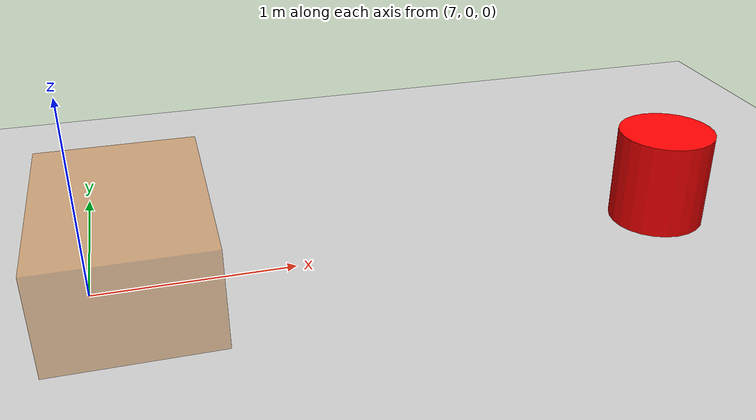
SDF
<?xml version="1.0" ?>
<sdf version="1.5">
  <world name="disaster_scene_sparse">
    <!-- Transport/ROS bridge is inert for ideal backend and required by RotorS. -->
    <plugin name="rotors_ros_interface_plugin"
            filename="librotors_gazebo_ros_interface_plugin.so" />
    <include><uri>model://sun</uri></include>
    <include><uri>model://ground_plane</uri></include>
    <physics type="ode">
      <max_step_size>0.001</max_step_size>
      <real_time_update_rate>1000</real_time_update_rate>
    </physics>
    <!-- Sparse-hazard regime: no physical collision obstacles; the single narrow
         risky band (x ~ 6.8-7.6) comes from the seeded traversability field. -->
    <model name="narrow_hazard_marker">
      <static>true</static>
      <pose>7.2 0 0.25 0 0 0</pose>
      <link name="link">
        <visual name="visual">
          <geometry><box><size>0.8 1.2 0.5</size></box></geometry>
          <material><ambient>0.8 0.4 0 0.4</ambient><diffuse>0.8 0.4 0 0.4</diffuse></material>
        </visual>
      </link>
    </model>
    <model name="goal_marker">
      <static>true</static>
      <pose>10 0 0.25 0 0 0</pose>
      <link name="link">
        <visual name="visual">
          <geometry><cylinder><radius>0.25</radius><length>0.5</length></cylinder></geometry>
          <material><ambient>1 0 0 1</ambient><diffuse>1 0 0 1</diffuse></material>
        </visual>
      </link>
    </model>
  </world>
</sdf>
